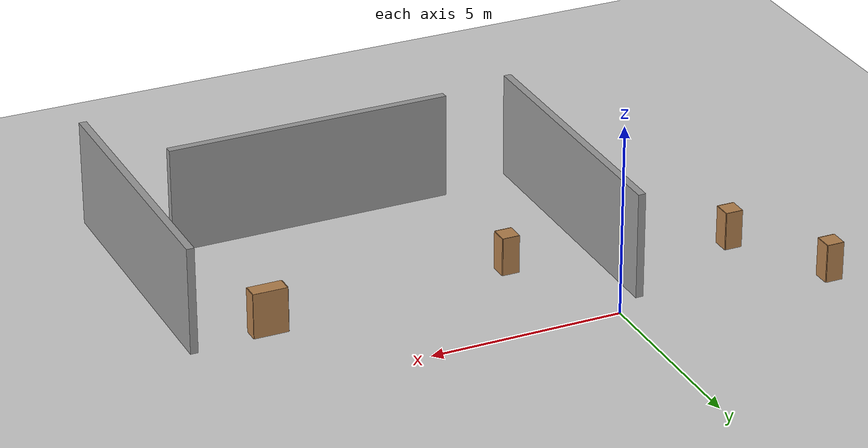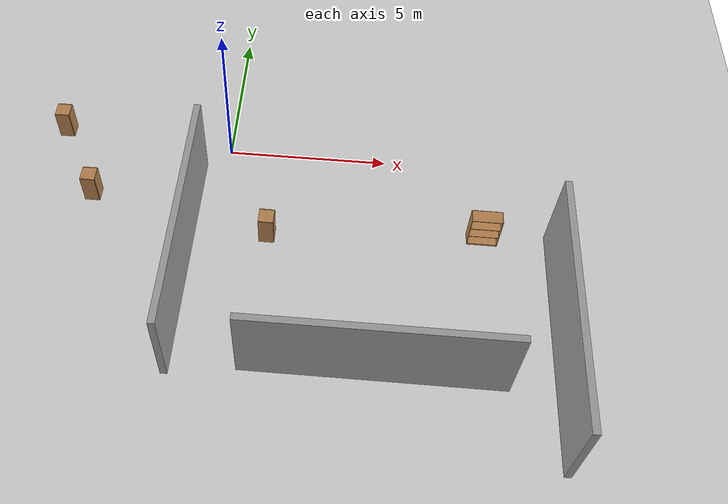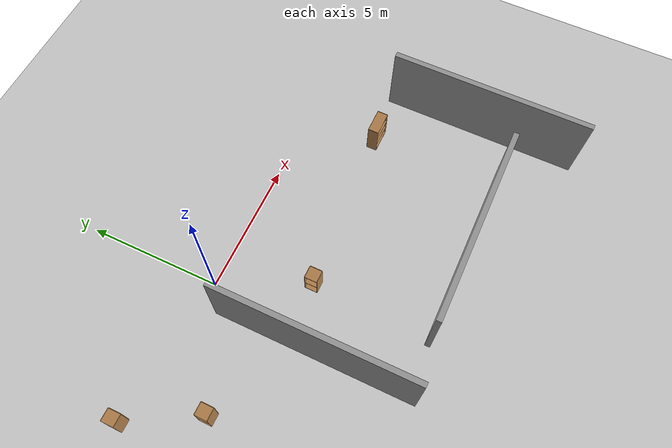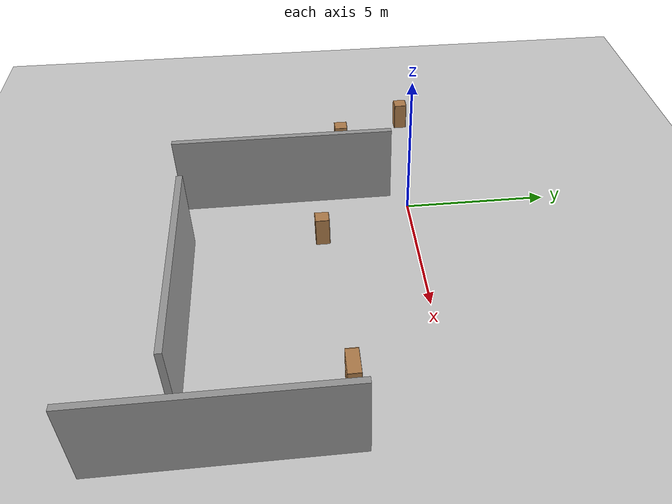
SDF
<sdf version="1.6">
 <world name="default">
  <model name="ground_plane">
   <static>1</static>
   <link name="link">
    <collision name="collision">
     <geometry><plane><normal>0 0 1</normal><size>100 100</size></plane></geometry>
     <surface><friction><ode><mu>100</mu><mu2>50</mu2></ode></friction></surface>
    </collision>
    <visual name="visual">
     <cast_shadows>0</cast_shadows>
     <geometry><plane><normal>0 0 1</normal><size>100 100</size></plane></geometry>
     <material>
      <script><uri>file://media/materials/scripts/gazebo.material</uri><name>Gazebo/Grey</name></script>
     </material>
    </visual>
   </link>
  </model>
  <model name="grey_wall">
   <static>1</static>
   <link name="link">
    <pose>0 0 1.4 0 -0 0</pose>
    <collision name="collision"><geometry><box><size>7.5 0.2 2.8</size></box></geometry></collision>
    <visual name="visual">
     <cast_shadows>0</cast_shadows>
     <geometry><box><size>7.5 0.2 2.8</size></box></geometry>
     <material>
      <script>
       <uri>model://grey_wall/materials/scripts</uri>
       <uri>model://grey_wall/materials/textures</uri>
       <name>vrc/grey_wall</name>
      </script>
     </material>
    </visual>
   </link>
   <pose>-0.804168 -4.29292 0 0 -0 1.57079</pose>
  </model>
  <model name="cabinet">
   <static>1</static>
   <link name="cabinet_bottom_plate">
    <inertial>
     <pose>0 0 -1 0 -0 0</pose>
     <inertia><ixx>2.05</ixx><ixy>0</ixy><ixz>0</ixz><iyy>2.05</iyy><iyz>0</iyz><izz>2.05</izz></inertia>
     <mass>25</mass>
    </inertial>
    <collision name="cabinet_bottom_plate_geom">
     <pose>0 0 0.01 0 -0 0</pose>
     <geometry><box><size>0.45 0.45 0.02</size></box></geometry>
    </collision>
    <visual name="cabinet_bottom_plate_geom_visual">
     <pose>0 0 0.01 0 -0 0</pose>
     <geometry><box><size>0.45 0.45 0.02</size></box></geometry>
     <material>
      <script><uri>file://media/materials/scripts/gazebo.material</uri><name>Gazebo/Wood</name></script>
     </material>
    </visual>
    <collision name="cabinet_bottom_plate_geom_cabinet_back_plate">
     <pose>0.235 0 0.51 0 -0 0</pose>
     <geometry><box><size>0.02 0.45 1.02</size></box></geometry>
    </collision>
    <visual name="cabinet_bottom_plate_geom_cabinet_back_plate_visual">
     <pose>0.235 0 0.51 0 -0 0</pose>
     <geometry><box><size>0.02 0.45 1.02</size></box></geometry>
     <material>
      <script><uri>file://media/materials/scripts/gazebo.material</uri><name>Gazebo/Wood</name></script>
     </material>
    </visual>
    <collision name="cabinet_bottom_plate_geom_cabinet_left_plate">
     <pose>0 0.235 0.51 0 -0 0</pose>
     <geometry><box><size>0.45 0.02 1.02</size></box></geometry>
    </collision>
    <visual name="cabinet_bottom_plate_geom_cabinet_left_plate_visual">
     <pose>0 0.235 0.51 0 -0 0</pose>
     <geometry><box><size>0.45 0.02 1.02</size></box></geometry>
     <material>
      <script><uri>file://media/materials/scripts/gazebo.material</uri><name>Gazebo/Wood</name></script>
     </material>
    </visual>
    <collision name="cabinet_bottom_plate_geom_cabinet_middle_plate">
     <pose>0 0 0.51 0 -0 0</pose>
     <geometry><box><size>0.45 0.45 0.02</size></box></geometry>
    </collision>
    <visual name="cabinet_bottom_plate_geom_cabinet_middle_plate_visual">
     <pose>0 0 0.51 0 -0 0</pose>
     <geometry><box><size>0.45 0.45 0.02</size></box></geometry>
     <material>
      <script><uri>file://media/materials/scripts/gazebo.material</uri><name>Gazebo/Wood</name></script>
     </material>
    </visual>
    <collision name="cabinet_bottom_plate_geom_cabinet_right_plate">
     <pose>0 -0.235 0.51 0 -0 0</pose>
     <geometry><box><size>0.45 0.02 1.02</size></box></geometry>
    </collision>
    <visual name="cabinet_bottom_plate_geom_cabinet_right_plate_visual">
     <pose>0 -0.235 0.51 0 -0 0</pose>
     <geometry><box><size>0.45 0.02 1.02</size></box></geometry>
     <material>
      <script><uri>file://media/materials/scripts/gazebo.material</uri><name>Gazebo/Wood</name></script>
     </material>
    </visual>
    <collision name="cabinet_bottom_plate_geom_cabinet_top_plate">
     <pose>0 0 1.01 0 -0 0</pose>
     <geometry><box><size>0.45 0.45 0.02</size></box></geometry>
    </collision>
    <visual name="cabinet_bottom_plate_geom_cabinet_top_plate_visual">
     <pose>0 0 1.01 0 -0 0</pose>
     <geometry><box><size>0.45 0.45 0.02</size></box></geometry>
     <material>
      <script><uri>file://media/materials/scripts/gazebo.material</uri><name>Gazebo/Wood</name></script>
     </material>
    </visual>
   </link>
   <pose>1.51567 -3.16801 0 0 -0 0</pose>
  </model>
  <model name="bookshelf_1">
   <static>1</static>
   <link name="link">
    <inertial><mass>1</mass></inertial>
    <collision name="back">
     <pose>0 0.005 0.6 0 -0 0</pose>
     <geometry><box><size>0.9 0.01 1.2</size></box></geometry>
    </collision>
    <visual name="visual1">
     <pose>0 0.005 0.6 0 -0 0</pose>
     <geometry><box><size>0.9 0.01 1.2</size></box></geometry>
     <material>
      <script><uri>file://media/materials/scripts/gazebo.material</uri><name>Gazebo/Wood</name></script>
     </material>
    </visual>
    <collision name="left_side">
     <pose>0.45 -0.195 0.6 0 -0 0</pose>
     <geometry><box><size>0.02 0.4 1.2</size></box></geometry>
    </collision>
    <visual name="visual2">
     <pose>0.45 -0.195 0.6 0 -0 0</pose>
     <geometry><box><size>0.02 0.4 1.2</size></box></geometry>
     <material>
      <script><uri>file://media/materials/scripts/gazebo.material</uri><name>Gazebo/Wood</name></script>
     </material>
    </visual>
    <collision name="right_side">
     <pose>-0.45 -0.195 0.6 0 -0 0</pose>
     <geometry><box><size>0.02 0.4 1.2</size></box></geometry>
    </collision>
    <visual name="visual3">
     <pose>-0.45 -0.195 0.6 0 -0 0</pose>
     <geometry><box><size>0.02 0.4 1.2</size></box></geometry>
     <material>
      <script><uri>file://media/materials/scripts/gazebo.material</uri><name>Gazebo/Wood</name></script>
     </material>
    </visual>
    <collision name="bottom">
     <pose>0 -0.195 0.03 0 -0 0</pose>
     <geometry><box><size>0.88 0.4 0.06</size></box></geometry>
    </collision>
    <visual name="visual4">
     <pose>0 -0.195 0.03 0 -0 0</pose>
     <geometry><box><size>0.88 0.4 0.06</size></box></geometry>
     <material>
      <script><uri>file://media/materials/scripts/gazebo.material</uri><name>Gazebo/Wood</name></script>
     </material>
    </visual>
    <collision name="top">
     <pose>0 -0.195 1.19 0 -0 0</pose>
     <geometry><box><size>0.88 0.4 0.02</size></box></geometry>
    </collision>
    <visual name="visual5">
     <pose>0 -0.195 1.19 0 -0 0</pose>
     <geometry><box><size>0.88 0.4 0.02</size></box></geometry>
     <material>
      <script><uri>file://media/materials/scripts/gazebo.material</uri><name>Gazebo/Wood</name></script>
     </material>
    </visual>
    <collision name="low_shelf">
     <pose>0 -0.195 0.43 0 -0 0</pose>
     <geometry><box><size>0.88 0.4 0.02</size></box></geometry>
    </collision>
    <visual name="visual6">
     <pose>0 -0.195 0.43 0 -0 0</pose>
     <geometry><box><size>0.88 0.4 0.02</size></box></geometry>
     <material>
      <script><uri>file://media/materials/scripts/gazebo.material</uri><name>Gazebo/Wood</name></script>
     </material>
    </visual>
    <collision name="high_shelf">
     <pose>0 -0.195 0.8 0 -0 0</pose>
     <geometry><box><size>0.88 0.4 0.02</size></box></geometry>
    </collision>
    <visual name="visual7">
     <pose>0 -0.195 0.8 0 -0 0</pose>
     <geometry><box><size>0.88 0.4 0.02</size></box></geometry>
     <material>
      <script><uri>file://media/materials/scripts/gazebo.material</uri><name>Gazebo/Wood</name></script>
     </material>
    </visual>
   </link>
   <pose>8.04125 -2.53379 0 0 -0 0</pose>
  </model>
  <model name="cabinet_clone">
   <static>1</static>
   <link name="cabinet_bottom_plate">
    <inertial>
     <pose>0 0 -1 0 -0 0</pose>
     <inertia><ixx>2.05</ixx><ixy>0</ixy><ixz>0</ixz><iyy>2.05</iyy><iyz>0</iyz><izz>2.05</izz></inertia>
     <mass>25</mass>
    </inertial>
    <collision name="cabinet_bottom_plate_geom">
     <pose>0 0 0.01 0 -0 0</pose>
     <geometry><box><size>0.45 0.45 0.02</size></box></geometry>
    </collision>
    <visual name="cabinet_bottom_plate_geom_visual">
     <pose>0 0 0.01 0 -0 0</pose>
     <geometry><box><size>0.45 0.45 0.02</size></box></geometry>
     <material>
      <script><uri>file://media/materials/scripts/gazebo.material</uri><name>Gazebo/Wood</name></script>
     </material>
    </visual>
    <collision name="cabinet_bottom_plate_geom_cabinet_back_plate">
     <pose>0.235 0 0.51 0 -0 0</pose>
     <geometry><box><size>0.02 0.45 1.02</size></box></geometry>
    </collision>
    <visual name="cabinet_bottom_plate_geom_cabinet_back_plate_visual">
     <pose>0.235 0 0.51 0 -0 0</pose>
     <geometry><box><size>0.02 0.45 1.02</size></box></geometry>
     <material>
      <script><uri>file://media/materials/scripts/gazebo.material</uri><name>Gazebo/Wood</name></script>
     </material>
    </visual>
    <collision name="cabinet_bottom_plate_geom_cabinet_left_plate">
     <pose>0 0.235 0.51 0 -0 0</pose>
     <geometry><box><size>0.45 0.02 1.02</size></box></geometry>
    </collision>
    <visual name="cabinet_bottom_plate_geom_cabinet_left_plate_visual">
     <pose>0 0.235 0.51 0 -0 0</pose>
     <geometry><box><size>0.45 0.02 1.02</size></box></geometry>
     <material>
      <script><uri>file://media/materials/scripts/gazebo.material</uri><name>Gazebo/Wood</name></script>
     </material>
    </visual>
    <collision name="cabinet_bottom_plate_geom_cabinet_middle_plate">
     <pose>0 0 0.51 0 -0 0</pose>
     <geometry><box><size>0.45 0.45 0.02</size></box></geometry>
    </collision>
    <visual name="cabinet_bottom_plate_geom_cabinet_middle_plate_visual">
     <pose>0 0 0.51 0 -0 0</pose>
     <geometry><box><size>0.45 0.45 0.02</size></box></geometry>
     <material>
      <script><uri>file://media/materials/scripts/gazebo.material</uri><name>Gazebo/Wood</name></script>
     </material>
    </visual>
    <collision name="cabinet_bottom_plate_geom_cabinet_right_plate">
     <pose>0 -0.235 0.51 0 -0 0</pose>
     <geometry><box><size>0.45 0.02 1.02</size></box></geometry>
    </collision>
    <visual name="cabinet_bottom_plate_geom_cabinet_right_plate_visual">
     <pose>0 -0.235 0.51 0 -0 0</pose>
     <geometry><box><size>0.45 0.02 1.02</size></box></geometry>
     <material>
      <script><uri>file://media/materials/scripts/gazebo.material</uri><name>Gazebo/Wood</name></script>
     </material>
    </visual>
    <collision name="cabinet_bottom_plate_geom_cabinet_top_plate">
     <pose>0 0 1.01 0 -0 0</pose>
     <geometry><box><size>0.45 0.45 0.02</size></box></geometry>
    </collision>
    <visual name="cabinet_bottom_plate_geom_cabinet_top_plate_visual">
     <pose>0 0 1.01 0 -0 0</pose>
     <geometry><box><size>0.45 0.45 0.02</size></box></geometry>
     <material>
      <script><uri>file://media/materials/scripts/gazebo.material</uri><name>Gazebo/Wood</name></script>
     </material>
    </visual>
   </link>
   <pose>-5.53159 0.476258 0 0 -0 0</pose>
  </model>
  <model name="cabinet_clone_0">
   <static>1</static>
   <link name="cabinet_bottom_plate">
    <inertial>
     <pose>0 0 -1 0 -0 0</pose>
     <inertia><ixx>2.05</ixx><ixy>0</ixy><ixz>0</ixz><iyy>2.05</iyy><iyz>0</iyz><izz>2.05</izz></inertia>
     <mass>25</mass>
    </inertial>
    <collision name="cabinet_bottom_plate_geom">
     <pose>0 0 0.01 0 -0 0</pose>
     <geometry><box><size>0.45 0.45 0.02</size></box></geometry>
    </collision>
    <visual name="cabinet_bottom_plate_geom_visual">
     <pose>0 0 0.01 0 -0 0</pose>
     <geometry><box><size>0.45 0.45 0.02</size></box></geometry>
     <material>
      <script><uri>file://media/materials/scripts/gazebo.material</uri><name>Gazebo/Wood</name></script>
     </material>
    </visual>
    <collision name="cabinet_bottom_plate_geom_cabinet_back_plate">
     <pose>0.235 0 0.51 0 -0 0</pose>
     <geometry><box><size>0.02 0.45 1.02</size></box></geometry>
    </collision>
    <visual name="cabinet_bottom_plate_geom_cabinet_back_plate_visual">
     <pose>0.235 0 0.51 0 -0 0</pose>
     <geometry><box><size>0.02 0.45 1.02</size></box></geometry>
     <material>
      <script><uri>file://media/materials/scripts/gazebo.material</uri><name>Gazebo/Wood</name></script>
     </material>
    </visual>
    <collision name="cabinet_bottom_plate_geom_cabinet_left_plate">
     <pose>0 0.235 0.51 0 -0 0</pose>
     <geometry><box><size>0.45 0.02 1.02</size></box></geometry>
    </collision>
    <visual name="cabinet_bottom_plate_geom_cabinet_left_plate_visual">
     <pose>0 0.235 0.51 0 -0 0</pose>
     <geometry><box><size>0.45 0.02 1.02</size></box></geometry>
     <material>
      <script><uri>file://media/materials/scripts/gazebo.material</uri><name>Gazebo/Wood</name></script>
     </material>
    </visual>
    <collision name="cabinet_bottom_plate_geom_cabinet_middle_plate">
     <pose>0 0 0.51 0 -0 0</pose>
     <geometry><box><size>0.45 0.45 0.02</size></box></geometry>
    </collision>
    <visual name="cabinet_bottom_plate_geom_cabinet_middle_plate_visual">
     <pose>0 0 0.51 0 -0 0</pose>
     <geometry><box><size>0.45 0.45 0.02</size></box></geometry>
     <material>
      <script><uri>file://media/materials/scripts/gazebo.material</uri><name>Gazebo/Wood</name></script>
     </material>
    </visual>
    <collision name="cabinet_bottom_plate_geom_cabinet_right_plate">
     <pose>0 -0.235 0.51 0 -0 0</pose>
     <geometry><box><size>0.45 0.02 1.02</size></box></geometry>
    </collision>
    <visual name="cabinet_bottom_plate_geom_cabinet_right_plate_visual">
     <pose>0 -0.235 0.51 0 -0 0</pose>
     <geometry><box><size>0.45 0.02 1.02</size></box></geometry>
     <material>
      <script><uri>file://media/materials/scripts/gazebo.material</uri><name>Gazebo/Wood</name></script>
     </material>
    </visual>
    <collision name="cabinet_bottom_plate_geom_cabinet_top_plate">
     <pose>0 0 1.01 0 -0 0</pose>
     <geometry><box><size>0.45 0.45 0.02</size></box></geometry>
    </collision>
    <visual name="cabinet_bottom_plate_geom_cabinet_top_plate_visual">
     <pose>0 0 1.01 0 -0 0</pose>
     <geometry><box><size>0.45 0.45 0.02</size></box></geometry>
     <material>
      <script><uri>file://media/materials/scripts/gazebo.material</uri><name>Gazebo/Wood</name></script>
     </material>
    </visual>
   </link>
   <pose>-4.11437 -2.06896 0 0 -0 0</pose>
  </model>
  <model name="grey_wall_clone_0">
   <static>1</static>
   <link name="link">
    <pose>0 0 1.4 0 -0 0</pose>
    <collision name="collision"><geometry><box><size>7.5 0.2 2.8</size></box></geometry></collision>
    <visual name="visual">
     <cast_shadows>0</cast_shadows>
     <geometry><box><size>7.5 0.2 2.8</size></box></geometry>
     <material>
      <script>
       <uri>model://grey_wall/materials/scripts</uri>
       <uri>model://grey_wall/materials/textures</uri>
       <name>vrc/grey_wall</name>
      </script>
     </material>
    </visual>
   </link>
   <pose>10.0326 -6.21941 0 0 -0 1.57079</pose>
  </model>
  <model name="grey_wall_clone_0_clone_0">
   <static>1</static>
   <link name="link">
    <pose>0 0 1.4 0 -0 0</pose>
    <collision name="collision"><geometry><box><size>7.5 0.2 2.8</size></box></geometry></collision>
    <visual name="visual">
     <cast_shadows>0</cast_shadows>
     <geometry><box><size>7.5 0.2 2.8</size></box></geometry>
     <material>
      <script>
       <uri>model://grey_wall/materials/scripts</uri>
       <uri>model://grey_wall/materials/textures</uri>
       <name>vrc/grey_wall</name>
      </script>
     </material>
    </visual>
   </link>
   <pose>4.90706 -7.61994 0 0 0 -3.13595</pose>
  </model>
 </world>
</sdf>
